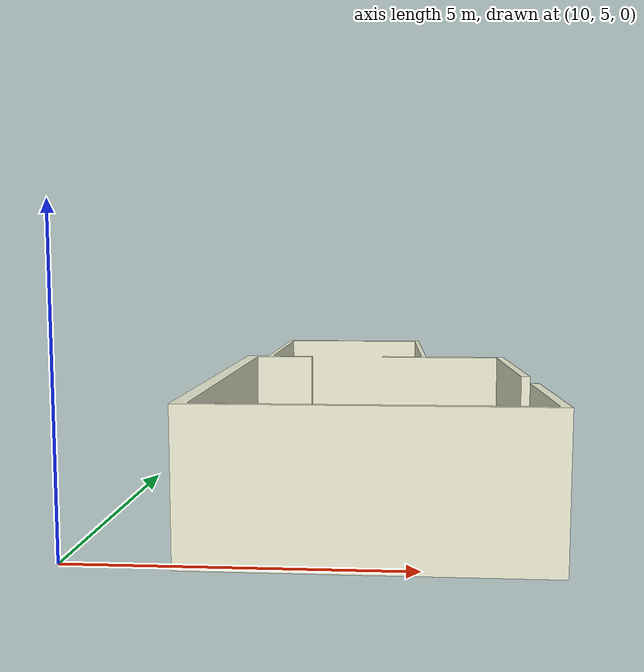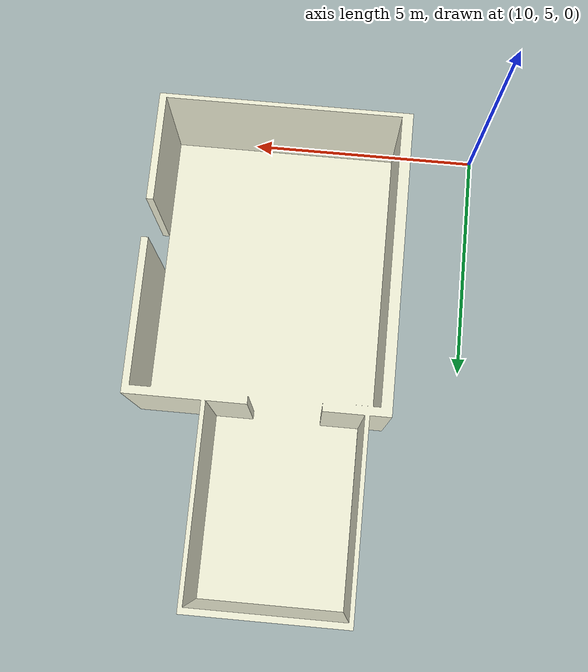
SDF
<?xml version="1.0" ?>
<sdf version="1.8">
  <model name="room">
    <static>true</static>
    <link name="room_link">
      <visual name="room_visual">
        <geometry>
          <mesh>
            <uri>model://room/room.stl</uri>
            <scale>0.03 0.03 0.03</scale>
          </mesh>
        </geometry>
        <material>
          <ambient>0.96 0.96 0.86 1</ambient>
          <diffuse>0.96 0.96 0.86 1</diffuse>
          <specular>0.1 0.1 0.1 1</specular>
          <emissive>0 0 0 1</emissive>
        </material>
      </visual>
      <collision name="room_collision">
        <geometry>
          <mesh>
            <uri>model://room/room.stl</uri>
            <scale>0.03 0.03 0.03</scale>
          </mesh>
        </geometry>
      </collision>
    </link>
  </model>
</sdf>
